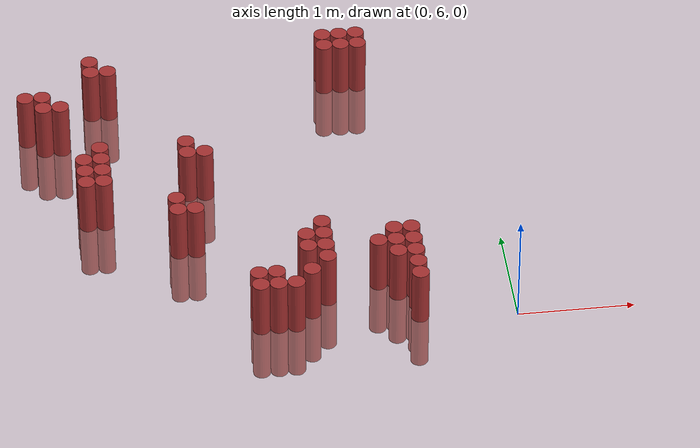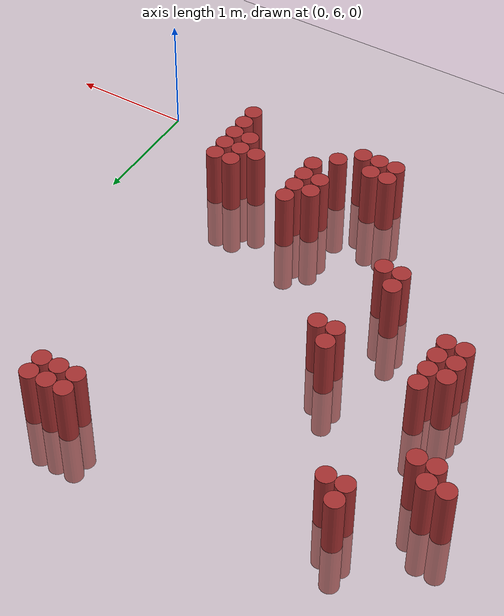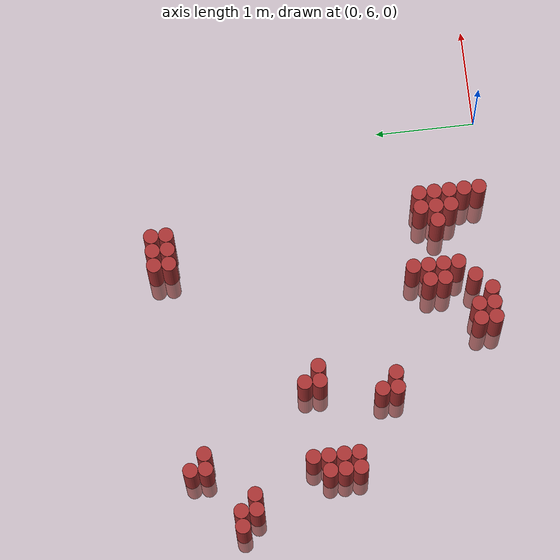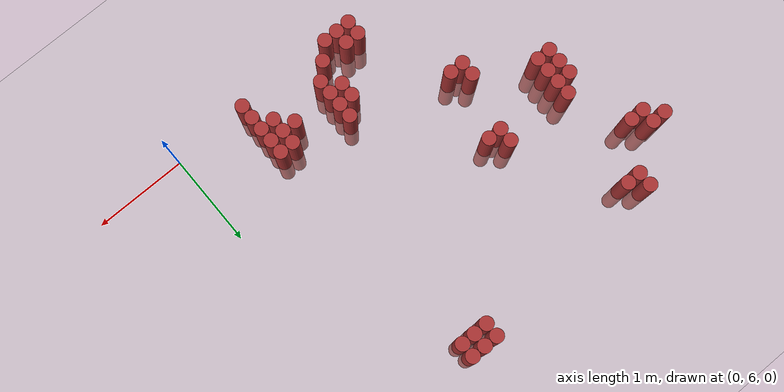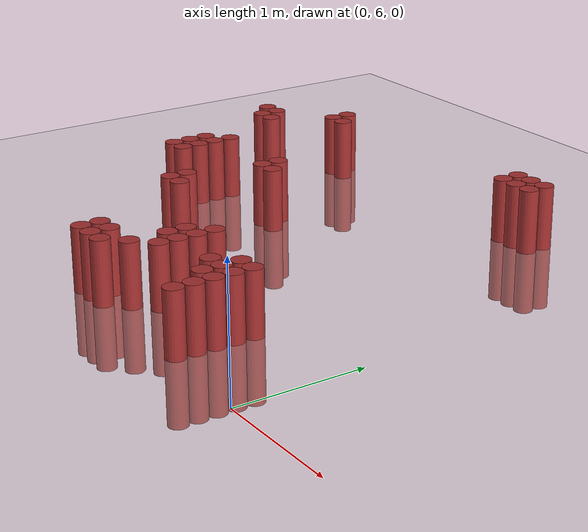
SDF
<sdf version="1.6">
 <world name="world_254">
  <model name="ground_plane">
   <static>1</static>
   <link name="link">
    <collision name="collision">
     <geometry><plane><normal>0 0 1</normal><size>100 100</size></plane></geometry>
     <surface><friction><ode><mu>100</mu><mu2>50</mu2></ode></friction></surface>
    </collision>
    <visual name="visual">
     <cast_shadows>0</cast_shadows>
     <geometry><plane><normal>0 0 1</normal><size>100 100</size></plane></geometry>
     <material>
      <script><uri>file://media/materials/scripts/gazebo.material</uri><name>Gazebo/Grey</name></script>
     </material>
    </visual>
   </link>
  </model>
  <model name="unit_cylinder_153">
   <static>1</static>
   <pose>-3.975000 8.775000 0.000000 0.000000 0.000000 0.000000</pose>
   <link name="link">
    <inertial>
     <mass>1</mass>
     <inertia><ixx>0.145833</ixx><ixy>0</ixy><ixz>0</ixz><iyy>0.145833</iyy><iyz>0</iyz><izz>0.125</izz></inertia>
    </inertial>
    <collision name="collision">
     <geometry><cylinder><radius>0.075000</radius><length>1</length></cylinder></geometry>
    </collision>
    <visual name="visual">
     <geometry><cylinder><radius>0.075000</radius><length>1</length></cylinder></geometry>
     <material>
      <ambient>0.648000 0.192000 0.192000 1</ambient>
      <diffuse>0.648000 0.192000 0.192000 1</diffuse>
     </material>
     <material>
      <script><name>Gazebo/Grey</name><uri>file://media/materials/scripts/gazebo.material</uri></script>
     </material>
    </visual>
   </link>
  </model>
  <model name="unit_cylinder_154">
   <static>1</static>
   <pose>-3.825000 8.625000 0.000000 0.000000 0.000000 0.000000</pose>
   <link name="link">
    <inertial>
     <mass>1</mass>
     <inertia><ixx>0.145833</ixx><ixy>0</ixy><ixz>0</ixz><iyy>0.145833</iyy><iyz>0</iyz><izz>0.125</izz></inertia>
    </inertial>
    <collision name="collision">
     <geometry><cylinder><radius>0.075000</radius><length>1</length></cylinder></geometry>
    </collision>
    <visual name="visual">
     <geometry><cylinder><radius>0.075000</radius><length>1</length></cylinder></geometry>
     <material>
      <ambient>0.648000 0.192000 0.192000 1</ambient>
      <diffuse>0.648000 0.192000 0.192000 1</diffuse>
     </material>
     <material>
      <script><name>Gazebo/Grey</name><uri>file://media/materials/scripts/gazebo.material</uri></script>
     </material>
    </visual>
   </link>
  </model>
  <model name="unit_cylinder_155">
   <static>1</static>
   <pose>-3.825000 8.775000 0.000000 0.000000 0.000000 0.000000</pose>
   <link name="link">
    <inertial>
     <mass>1</mass>
     <inertia><ixx>0.145833</ixx><ixy>0</ixy><ixz>0</ixz><iyy>0.145833</iyy><iyz>0</iyz><izz>0.125</izz></inertia>
    </inertial>
    <collision name="collision">
     <geometry><cylinder><radius>0.075000</radius><length>1</length></cylinder></geometry>
    </collision>
    <visual name="visual">
     <geometry><cylinder><radius>0.075000</radius><length>1</length></cylinder></geometry>
     <material>
      <ambient>0.648000 0.192000 0.192000 1</ambient>
      <diffuse>0.648000 0.192000 0.192000 1</diffuse>
     </material>
     <material>
      <script><name>Gazebo/Grey</name><uri>file://media/materials/scripts/gazebo.material</uri></script>
     </material>
    </visual>
   </link>
  </model>
  <model name="unit_cylinder_156">
   <static>1</static>
   <pose>-3.675000 8.625000 0.000000 0.000000 0.000000 0.000000</pose>
   <link name="link">
    <inertial>
     <mass>1</mass>
     <inertia><ixx>0.145833</ixx><ixy>0</ixy><ixz>0</ixz><iyy>0.145833</iyy><iyz>0</iyz><izz>0.125</izz></inertia>
    </inertial>
    <collision name="collision">
     <geometry><cylinder><radius>0.075000</radius><length>1</length></cylinder></geometry>
    </collision>
    <visual name="visual">
     <geometry><cylinder><radius>0.075000</radius><length>1</length></cylinder></geometry>
     <material>
      <ambient>0.648000 0.192000 0.192000 1</ambient>
      <diffuse>0.648000 0.192000 0.192000 1</diffuse>
     </material>
     <material>
      <script><name>Gazebo/Grey</name><uri>file://media/materials/scripts/gazebo.material</uri></script>
     </material>
    </visual>
   </link>
  </model>
  <model name="unit_cylinder_157">
   <static>1</static>
   <pose>-3.525000 7.575000 0.000000 0.000000 0.000000 0.000000</pose>
   <link name="link">
    <inertial>
     <mass>1</mass>
     <inertia><ixx>0.145833</ixx><ixy>0</ixy><ixz>0</ixz><iyy>0.145833</iyy><iyz>0</iyz><izz>0.125</izz></inertia>
    </inertial>
    <collision name="collision">
     <geometry><cylinder><radius>0.075000</radius><length>1</length></cylinder></geometry>
    </collision>
    <visual name="visual">
     <geometry><cylinder><radius>0.075000</radius><length>1</length></cylinder></geometry>
     <material>
      <ambient>0.648000 0.192000 0.192000 1</ambient>
      <diffuse>0.648000 0.192000 0.192000 1</diffuse>
     </material>
     <material>
      <script><name>Gazebo/Grey</name><uri>file://media/materials/scripts/gazebo.material</uri></script>
     </material>
    </visual>
   </link>
  </model>
  <model name="unit_cylinder_158">
   <static>1</static>
   <pose>-3.525000 7.725000 0.000000 0.000000 0.000000 0.000000</pose>
   <link name="link">
    <inertial>
     <mass>1</mass>
     <inertia><ixx>0.145833</ixx><ixy>0</ixy><ixz>0</ixz><iyy>0.145833</iyy><iyz>0</iyz><izz>0.125</izz></inertia>
    </inertial>
    <collision name="collision">
     <geometry><cylinder><radius>0.075000</radius><length>1</length></cylinder></geometry>
    </collision>
    <visual name="visual">
     <geometry><cylinder><radius>0.075000</radius><length>1</length></cylinder></geometry>
     <material>
      <ambient>0.648000 0.192000 0.192000 1</ambient>
      <diffuse>0.648000 0.192000 0.192000 1</diffuse>
     </material>
     <material>
      <script><name>Gazebo/Grey</name><uri>file://media/materials/scripts/gazebo.material</uri></script>
     </material>
    </visual>
   </link>
  </model>
  <model name="unit_cylinder_159">
   <static>1</static>
   <pose>-3.525000 7.875000 0.000000 0.000000 0.000000 0.000000</pose>
   <link name="link">
    <inertial>
     <mass>1</mass>
     <inertia><ixx>0.145833</ixx><ixy>0</ixy><ixz>0</ixz><iyy>0.145833</iyy><iyz>0</iyz><izz>0.125</izz></inertia>
    </inertial>
    <collision name="collision">
     <geometry><cylinder><radius>0.075000</radius><length>1</length></cylinder></geometry>
    </collision>
    <visual name="visual">
     <geometry><cylinder><radius>0.075000</radius><length>1</length></cylinder></geometry>
     <material>
      <ambient>0.648000 0.192000 0.192000 1</ambient>
      <diffuse>0.648000 0.192000 0.192000 1</diffuse>
     </material>
     <material>
      <script><name>Gazebo/Grey</name><uri>file://media/materials/scripts/gazebo.material</uri></script>
     </material>
    </visual>
   </link>
  </model>
  <model name="unit_cylinder_160">
   <static>1</static>
   <pose>-3.375000 7.575000 0.000000 0.000000 0.000000 0.000000</pose>
   <link name="link">
    <inertial>
     <mass>1</mass>
     <inertia><ixx>0.145833</ixx><ixy>0</ixy><ixz>0</ixz><iyy>0.145833</iyy><iyz>0</iyz><izz>0.125</izz></inertia>
    </inertial>
    <collision name="collision">
     <geometry><cylinder><radius>0.075000</radius><length>1</length></cylinder></geometry>
    </collision>
    <visual name="visual">
     <geometry><cylinder><radius>0.075000</radius><length>1</length></cylinder></geometry>
     <material>
      <ambient>0.648000 0.192000 0.192000 1</ambient>
      <diffuse>0.648000 0.192000 0.192000 1</diffuse>
     </material>
     <material>
      <script><name>Gazebo/Grey</name><uri>file://media/materials/scripts/gazebo.material</uri></script>
     </material>
    </visual>
   </link>
  </model>
  <model name="unit_cylinder_161">
   <static>1</static>
   <pose>-3.375000 7.725000 0.000000 0.000000 0.000000 0.000000</pose>
   <link name="link">
    <inertial>
     <mass>1</mass>
     <inertia><ixx>0.145833</ixx><ixy>0</ixy><ixz>0</ixz><iyy>0.145833</iyy><iyz>0</iyz><izz>0.125</izz></inertia>
    </inertial>
    <collision name="collision">
     <geometry><cylinder><radius>0.075000</radius><length>1</length></cylinder></geometry>
    </collision>
    <visual name="visual">
     <geometry><cylinder><radius>0.075000</radius><length>1</length></cylinder></geometry>
     <material>
      <ambient>0.648000 0.192000 0.192000 1</ambient>
      <diffuse>0.648000 0.192000 0.192000 1</diffuse>
     </material>
     <material>
      <script><name>Gazebo/Grey</name><uri>file://media/materials/scripts/gazebo.material</uri></script>
     </material>
    </visual>
   </link>
  </model>
  <model name="unit_cylinder_162">
   <static>1</static>
   <pose>-3.375000 7.875000 0.000000 0.000000 0.000000 0.000000</pose>
   <link name="link">
    <inertial>
     <mass>1</mass>
     <inertia><ixx>0.145833</ixx><ixy>0</ixy><ixz>0</ixz><iyy>0.145833</iyy><iyz>0</iyz><izz>0.125</izz></inertia>
    </inertial>
    <collision name="collision">
     <geometry><cylinder><radius>0.075000</radius><length>1</length></cylinder></geometry>
    </collision>
    <visual name="visual">
     <geometry><cylinder><radius>0.075000</radius><length>1</length></cylinder></geometry>
     <material>
      <ambient>0.648000 0.192000 0.192000 1</ambient>
      <diffuse>0.648000 0.192000 0.192000 1</diffuse>
     </material>
     <material>
      <script><name>Gazebo/Grey</name><uri>file://media/materials/scripts/gazebo.material</uri></script>
     </material>
    </visual>
   </link>
  </model>
  <model name="unit_cylinder_163">
   <static>1</static>
   <pose>-3.375000 8.025000 0.000000 0.000000 0.000000 0.000000</pose>
   <link name="link">
    <inertial>
     <mass>1</mass>
     <inertia><ixx>0.145833</ixx><ixy>0</ixy><ixz>0</ixz><iyy>0.145833</iyy><iyz>0</iyz><izz>0.125</izz></inertia>
    </inertial>
    <collision name="collision">
     <geometry><cylinder><radius>0.075000</radius><length>1</length></cylinder></geometry>
    </collision>
    <visual name="visual">
     <geometry><cylinder><radius>0.075000</radius><length>1</length></cylinder></geometry>
     <material>
      <ambient>0.648000 0.192000 0.192000 1</ambient>
      <diffuse>0.648000 0.192000 0.192000 1</diffuse>
     </material>
     <material>
      <script><name>Gazebo/Grey</name><uri>file://media/materials/scripts/gazebo.material</uri></script>
     </material>
    </visual>
   </link>
  </model>
  <model name="unit_cylinder_164">
   <static>1</static>
   <pose>-3.375000 9.075000 0.000000 0.000000 0.000000 0.000000</pose>
   <link name="link">
    <inertial>
     <mass>1</mass>
     <inertia><ixx>0.145833</ixx><ixy>0</ixy><ixz>0</ixz><iyy>0.145833</iyy><iyz>0</iyz><izz>0.125</izz></inertia>
    </inertial>
    <collision name="collision">
     <geometry><cylinder><radius>0.075000</radius><length>1</length></cylinder></geometry>
    </collision>
    <visual name="visual">
     <geometry><cylinder><radius>0.075000</radius><length>1</length></cylinder></geometry>
     <material>
      <ambient>0.648000 0.192000 0.192000 1</ambient>
      <diffuse>0.648000 0.192000 0.192000 1</diffuse>
     </material>
     <material>
      <script><name>Gazebo/Grey</name><uri>file://media/materials/scripts/gazebo.material</uri></script>
     </material>
    </visual>
   </link>
  </model>
  <model name="unit_cylinder_165">
   <static>1</static>
   <pose>-3.375000 9.225000 0.000000 0.000000 0.000000 0.000000</pose>
   <link name="link">
    <inertial>
     <mass>1</mass>
     <inertia><ixx>0.145833</ixx><ixy>0</ixy><ixz>0</ixz><iyy>0.145833</iyy><iyz>0</iyz><izz>0.125</izz></inertia>
    </inertial>
    <collision name="collision">
     <geometry><cylinder><radius>0.075000</radius><length>1</length></cylinder></geometry>
    </collision>
    <visual name="visual">
     <geometry><cylinder><radius>0.075000</radius><length>1</length></cylinder></geometry>
     <material>
      <ambient>0.648000 0.192000 0.192000 1</ambient>
      <diffuse>0.648000 0.192000 0.192000 1</diffuse>
     </material>
     <material>
      <script><name>Gazebo/Grey</name><uri>file://media/materials/scripts/gazebo.material</uri></script>
     </material>
    </visual>
   </link>
  </model>
  <model name="unit_cylinder_166">
   <static>1</static>
   <pose>-3.225000 9.075000 0.000000 0.000000 0.000000 0.000000</pose>
   <link name="link">
    <inertial>
     <mass>1</mass>
     <inertia><ixx>0.145833</ixx><ixy>0</ixy><ixz>0</ixz><iyy>0.145833</iyy><iyz>0</iyz><izz>0.125</izz></inertia>
    </inertial>
    <collision name="collision">
     <geometry><cylinder><radius>0.075000</radius><length>1</length></cylinder></geometry>
    </collision>
    <visual name="visual">
     <geometry><cylinder><radius>0.075000</radius><length>1</length></cylinder></geometry>
     <material>
      <ambient>0.648000 0.192000 0.192000 1</ambient>
      <diffuse>0.648000 0.192000 0.192000 1</diffuse>
     </material>
     <material>
      <script><name>Gazebo/Grey</name><uri>file://media/materials/scripts/gazebo.material</uri></script>
     </material>
    </visual>
   </link>
  </model>
  <model name="unit_cylinder_170">
   <static>1</static>
   <pose>-2.775000 7.125000 0.000000 0.000000 0.000000 0.000000</pose>
   <link name="link">
    <inertial>
     <mass>1</mass>
     <inertia><ixx>0.145833</ixx><ixy>0</ixy><ixz>0</ixz><iyy>0.145833</iyy><iyz>0</iyz><izz>0.125</izz></inertia>
    </inertial>
    <collision name="collision">
     <geometry><cylinder><radius>0.075000</radius><length>1</length></cylinder></geometry>
    </collision>
    <visual name="visual">
     <geometry><cylinder><radius>0.075000</radius><length>1</length></cylinder></geometry>
     <material>
      <ambient>0.648000 0.192000 0.192000 1</ambient>
      <diffuse>0.648000 0.192000 0.192000 1</diffuse>
     </material>
     <material>
      <script><name>Gazebo/Grey</name><uri>file://media/materials/scripts/gazebo.material</uri></script>
     </material>
    </visual>
   </link>
  </model>
  <model name="unit_cylinder_171">
   <static>1</static>
   <pose>-2.775000 7.275000 0.000000 0.000000 0.000000 0.000000</pose>
   <link name="link">
    <inertial>
     <mass>1</mass>
     <inertia><ixx>0.145833</ixx><ixy>0</ixy><ixz>0</ixz><iyy>0.145833</iyy><iyz>0</iyz><izz>0.125</izz></inertia>
    </inertial>
    <collision name="collision">
     <geometry><cylinder><radius>0.075000</radius><length>1</length></cylinder></geometry>
    </collision>
    <visual name="visual">
     <geometry><cylinder><radius>0.075000</radius><length>1</length></cylinder></geometry>
     <material>
      <ambient>0.648000 0.192000 0.192000 1</ambient>
      <diffuse>0.648000 0.192000 0.192000 1</diffuse>
     </material>
     <material>
      <script><name>Gazebo/Grey</name><uri>file://media/materials/scripts/gazebo.material</uri></script>
     </material>
    </visual>
   </link>
  </model>
  <model name="unit_cylinder_175">
   <static>1</static>
   <pose>-2.625000 7.125000 0.000000 0.000000 0.000000 0.000000</pose>
   <link name="link">
    <inertial>
     <mass>1</mass>
     <inertia><ixx>0.145833</ixx><ixy>0</ixy><ixz>0</ixz><iyy>0.145833</iyy><iyz>0</iyz><izz>0.125</izz></inertia>
    </inertial>
    <collision name="collision">
     <geometry><cylinder><radius>0.075000</radius><length>1</length></cylinder></geometry>
    </collision>
    <visual name="visual">
     <geometry><cylinder><radius>0.075000</radius><length>1</length></cylinder></geometry>
     <material>
      <ambient>0.648000 0.192000 0.192000 1</ambient>
      <diffuse>0.648000 0.192000 0.192000 1</diffuse>
     </material>
     <material>
      <script><name>Gazebo/Grey</name><uri>file://media/materials/scripts/gazebo.material</uri></script>
     </material>
    </visual>
   </link>
  </model>
  <model name="unit_cylinder_176">
   <static>1</static>
   <pose>-2.625000 7.875000 0.000000 0.000000 0.000000 0.000000</pose>
   <link name="link">
    <inertial>
     <mass>1</mass>
     <inertia><ixx>0.145833</ixx><ixy>0</ixy><ixz>0</ixz><iyy>0.145833</iyy><iyz>0</iyz><izz>0.125</izz></inertia>
    </inertial>
    <collision name="collision">
     <geometry><cylinder><radius>0.075000</radius><length>1</length></cylinder></geometry>
    </collision>
    <visual name="visual">
     <geometry><cylinder><radius>0.075000</radius><length>1</length></cylinder></geometry>
     <material>
      <ambient>0.648000 0.192000 0.192000 1</ambient>
      <diffuse>0.648000 0.192000 0.192000 1</diffuse>
     </material>
     <material>
      <script><name>Gazebo/Grey</name><uri>file://media/materials/scripts/gazebo.material</uri></script>
     </material>
    </visual>
   </link>
  </model>
  <model name="unit_cylinder_177">
   <static>1</static>
   <pose>-2.625000 8.025000 0.000000 0.000000 0.000000 0.000000</pose>
   <link name="link">
    <inertial>
     <mass>1</mass>
     <inertia><ixx>0.145833</ixx><ixy>0</ixy><ixz>0</ixz><iyy>0.145833</iyy><iyz>0</iyz><izz>0.125</izz></inertia>
    </inertial>
    <collision name="collision">
     <geometry><cylinder><radius>0.075000</radius><length>1</length></cylinder></geometry>
    </collision>
    <visual name="visual">
     <geometry><cylinder><radius>0.075000</radius><length>1</length></cylinder></geometry>
     <material>
      <ambient>0.648000 0.192000 0.192000 1</ambient>
      <diffuse>0.648000 0.192000 0.192000 1</diffuse>
     </material>
     <material>
      <script><name>Gazebo/Grey</name><uri>file://media/materials/scripts/gazebo.material</uri></script>
     </material>
    </visual>
   </link>
  </model>
  <model name="unit_cylinder_179">
   <static>1</static>
   <pose>-2.475000 7.875000 0.000000 0.000000 0.000000 0.000000</pose>
   <link name="link">
    <inertial>
     <mass>1</mass>
     <inertia><ixx>0.145833</ixx><ixy>0</ixy><ixz>0</ixz><iyy>0.145833</iyy><iyz>0</iyz><izz>0.125</izz></inertia>
    </inertial>
    <collision name="collision">
     <geometry><cylinder><radius>0.075000</radius><length>1</length></cylinder></geometry>
    </collision>
    <visual name="visual">
     <geometry><cylinder><radius>0.075000</radius><length>1</length></cylinder></geometry>
     <material>
      <ambient>0.648000 0.192000 0.192000 1</ambient>
      <diffuse>0.648000 0.192000 0.192000 1</diffuse>
     </material>
     <material>
      <script><name>Gazebo/Grey</name><uri>file://media/materials/scripts/gazebo.material</uri></script>
     </material>
    </visual>
   </link>
  </model>
  <model name="unit_cylinder_181">
   <static>1</static>
   <pose>-2.175000 6.075000 0.000000 0.000000 0.000000 0.000000</pose>
   <link name="link">
    <inertial>
     <mass>1</mass>
     <inertia><ixx>0.145833</ixx><ixy>0</ixy><ixz>0</ixz><iyy>0.145833</iyy><iyz>0</iyz><izz>0.125</izz></inertia>
    </inertial>
    <collision name="collision">
     <geometry><cylinder><radius>0.075000</radius><length>1</length></cylinder></geometry>
    </collision>
    <visual name="visual">
     <geometry><cylinder><radius>0.075000</radius><length>1</length></cylinder></geometry>
     <material>
      <ambient>0.648000 0.192000 0.192000 1</ambient>
      <diffuse>0.648000 0.192000 0.192000 1</diffuse>
     </material>
     <material>
      <script><name>Gazebo/Grey</name><uri>file://media/materials/scripts/gazebo.material</uri></script>
     </material>
    </visual>
   </link>
  </model>
  <model name="unit_cylinder_182">
   <static>1</static>
   <pose>-2.175000 6.225000 0.000000 0.000000 0.000000 0.000000</pose>
   <link name="link">
    <inertial>
     <mass>1</mass>
     <inertia><ixx>0.145833</ixx><ixy>0</ixy><ixz>0</ixz><iyy>0.145833</iyy><iyz>0</iyz><izz>0.125</izz></inertia>
    </inertial>
    <collision name="collision">
     <geometry><cylinder><radius>0.075000</radius><length>1</length></cylinder></geometry>
    </collision>
    <visual name="visual">
     <geometry><cylinder><radius>0.075000</radius><length>1</length></cylinder></geometry>
     <material>
      <ambient>0.648000 0.192000 0.192000 1</ambient>
      <diffuse>0.648000 0.192000 0.192000 1</diffuse>
     </material>
     <material>
      <script><name>Gazebo/Grey</name><uri>file://media/materials/scripts/gazebo.material</uri></script>
     </material>
    </visual>
   </link>
  </model>
  <model name="unit_cylinder_185">
   <static>1</static>
   <pose>-2.025000 6.075000 0.000000 0.000000 0.000000 0.000000</pose>
   <link name="link">
    <inertial>
     <mass>1</mass>
     <inertia><ixx>0.145833</ixx><ixy>0</ixy><ixz>0</ixz><iyy>0.145833</iyy><iyz>0</iyz><izz>0.125</izz></inertia>
    </inertial>
    <collision name="collision">
     <geometry><cylinder><radius>0.075000</radius><length>1</length></cylinder></geometry>
    </collision>
    <visual name="visual">
     <geometry><cylinder><radius>0.075000</radius><length>1</length></cylinder></geometry>
     <material>
      <ambient>0.648000 0.192000 0.192000 1</ambient>
      <diffuse>0.648000 0.192000 0.192000 1</diffuse>
     </material>
     <material>
      <script><name>Gazebo/Grey</name><uri>file://media/materials/scripts/gazebo.material</uri></script>
     </material>
    </visual>
   </link>
  </model>
  <model name="unit_cylinder_186">
   <static>1</static>
   <pose>-2.025000 6.225000 0.000000 0.000000 0.000000 0.000000</pose>
   <link name="link">
    <inertial>
     <mass>1</mass>
     <inertia><ixx>0.145833</ixx><ixy>0</ixy><ixz>0</ixz><iyy>0.145833</iyy><iyz>0</iyz><izz>0.125</izz></inertia>
    </inertial>
    <collision name="collision">
     <geometry><cylinder><radius>0.075000</radius><length>1</length></cylinder></geometry>
    </collision>
    <visual name="visual">
     <geometry><cylinder><radius>0.075000</radius><length>1</length></cylinder></geometry>
     <material>
      <ambient>0.648000 0.192000 0.192000 1</ambient>
      <diffuse>0.648000 0.192000 0.192000 1</diffuse>
     </material>
     <material>
      <script><name>Gazebo/Grey</name><uri>file://media/materials/scripts/gazebo.material</uri></script>
     </material>
    </visual>
   </link>
  </model>
  <model name="unit_cylinder_190">
   <static>1</static>
   <pose>-1.875000 6.075000 0.000000 0.000000 0.000000 0.000000</pose>
   <link name="link">
    <inertial>
     <mass>1</mass>
     <inertia><ixx>0.145833</ixx><ixy>0</ixy><ixz>0</ixz><iyy>0.145833</iyy><iyz>0</iyz><izz>0.125</izz></inertia>
    </inertial>
    <collision name="collision">
     <geometry><cylinder><radius>0.075000</radius><length>1</length></cylinder></geometry>
    </collision>
    <visual name="visual">
     <geometry><cylinder><radius>0.075000</radius><length>1</length></cylinder></geometry>
     <material>
      <ambient>0.648000 0.192000 0.192000 1</ambient>
      <diffuse>0.648000 0.192000 0.192000 1</diffuse>
     </material>
     <material>
      <script><name>Gazebo/Grey</name><uri>file://media/materials/scripts/gazebo.material</uri></script>
     </material>
    </visual>
   </link>
  </model>
  <model name="unit_cylinder_195">
   <static>1</static>
   <pose>-1.725000 6.225000 0.000000 0.000000 0.000000 0.000000</pose>
   <link name="link">
    <inertial>
     <mass>1</mass>
     <inertia><ixx>0.145833</ixx><ixy>0</ixy><ixz>0</ixz><iyy>0.145833</iyy><iyz>0</iyz><izz>0.125</izz></inertia>
    </inertial>
    <collision name="collision">
     <geometry><cylinder><radius>0.075000</radius><length>1</length></cylinder></geometry>
    </collision>
    <visual name="visual">
     <geometry><cylinder><radius>0.075000</radius><length>1</length></cylinder></geometry>
     <material>
      <ambient>0.648000 0.192000 0.192000 1</ambient>
      <diffuse>0.648000 0.192000 0.192000 1</diffuse>
     </material>
     <material>
      <script><name>Gazebo/Grey</name><uri>file://media/materials/scripts/gazebo.material</uri></script>
     </material>
    </visual>
   </link>
  </model>
  <model name="unit_cylinder_196">
   <static>1</static>
   <pose>-1.725000 6.525000 0.000000 0.000000 0.000000 0.000000</pose>
   <link name="link">
    <inertial>
     <mass>1</mass>
     <inertia><ixx>0.145833</ixx><ixy>0</ixy><ixz>0</ixz><iyy>0.145833</iyy><iyz>0</iyz><izz>0.125</izz></inertia>
    </inertial>
    <collision name="collision">
     <geometry><cylinder><radius>0.075000</radius><length>1</length></cylinder></geometry>
    </collision>
    <visual name="visual">
     <geometry><cylinder><radius>0.075000</radius><length>1</length></cylinder></geometry>
     <material>
      <ambient>0.648000 0.192000 0.192000 1</ambient>
      <diffuse>0.648000 0.192000 0.192000 1</diffuse>
     </material>
     <material>
      <script><name>Gazebo/Grey</name><uri>file://media/materials/scripts/gazebo.material</uri></script>
     </material>
    </visual>
   </link>
  </model>
  <model name="unit_cylinder_197">
   <static>1</static>
   <pose>-1.725000 6.675000 0.000000 0.000000 0.000000 0.000000</pose>
   <link name="link">
    <inertial>
     <mass>1</mass>
     <inertia><ixx>0.145833</ixx><ixy>0</ixy><ixz>0</ixz><iyy>0.145833</iyy><iyz>0</iyz><izz>0.125</izz></inertia>
    </inertial>
    <collision name="collision">
     <geometry><cylinder><radius>0.075000</radius><length>1</length></cylinder></geometry>
    </collision>
    <visual name="visual">
     <geometry><cylinder><radius>0.075000</radius><length>1</length></cylinder></geometry>
     <material>
      <ambient>0.648000 0.192000 0.192000 1</ambient>
      <diffuse>0.648000 0.192000 0.192000 1</diffuse>
     </material>
     <material>
      <script><name>Gazebo/Grey</name><uri>file://media/materials/scripts/gazebo.material</uri></script>
     </material>
    </visual>
   </link>
  </model>
  <model name="unit_cylinder_200">
   <static>1</static>
   <pose>-1.575000 6.375000 0.000000 0.000000 0.000000 0.000000</pose>
   <link name="link">
    <inertial>
     <mass>1</mass>
     <inertia><ixx>0.145833</ixx><ixy>0</ixy><ixz>0</ixz><iyy>0.145833</iyy><iyz>0</iyz><izz>0.125</izz></inertia>
    </inertial>
    <collision name="collision">
     <geometry><cylinder><radius>0.075000</radius><length>1</length></cylinder></geometry>
    </collision>
    <visual name="visual">
     <geometry><cylinder><radius>0.075000</radius><length>1</length></cylinder></geometry>
     <material>
      <ambient>0.648000 0.192000 0.192000 1</ambient>
      <diffuse>0.648000 0.192000 0.192000 1</diffuse>
     </material>
     <material>
      <script><name>Gazebo/Grey</name><uri>file://media/materials/scripts/gazebo.material</uri></script>
     </material>
    </visual>
   </link>
  </model>
  <model name="unit_cylinder_201">
   <static>1</static>
   <pose>-1.575000 6.525000 0.000000 0.000000 0.000000 0.000000</pose>
   <link name="link">
    <inertial>
     <mass>1</mass>
     <inertia><ixx>0.145833</ixx><ixy>0</ixy><ixz>0</ixz><iyy>0.145833</iyy><iyz>0</iyz><izz>0.125</izz></inertia>
    </inertial>
    <collision name="collision">
     <geometry><cylinder><radius>0.075000</radius><length>1</length></cylinder></geometry>
    </collision>
    <visual name="visual">
     <geometry><cylinder><radius>0.075000</radius><length>1</length></cylinder></geometry>
     <material>
      <ambient>0.648000 0.192000 0.192000 1</ambient>
      <diffuse>0.648000 0.192000 0.192000 1</diffuse>
     </material>
     <material>
      <script><name>Gazebo/Grey</name><uri>file://media/materials/scripts/gazebo.material</uri></script>
     </material>
    </visual>
   </link>
  </model>
  <model name="unit_cylinder_202">
   <static>1</static>
   <pose>-1.575000 6.675000 0.000000 0.000000 0.000000 0.000000</pose>
   <link name="link">
    <inertial>
     <mass>1</mass>
     <inertia><ixx>0.145833</ixx><ixy>0</ixy><ixz>0</ixz><iyy>0.145833</iyy><iyz>0</iyz><izz>0.125</izz></inertia>
    </inertial>
    <collision name="collision">
     <geometry><cylinder><radius>0.075000</radius><length>1</length></cylinder></geometry>
    </collision>
    <visual name="visual">
     <geometry><cylinder><radius>0.075000</radius><length>1</length></cylinder></geometry>
     <material>
      <ambient>0.648000 0.192000 0.192000 1</ambient>
      <diffuse>0.648000 0.192000 0.192000 1</diffuse>
     </material>
     <material>
      <script><name>Gazebo/Grey</name><uri>file://media/materials/scripts/gazebo.material</uri></script>
     </material>
    </visual>
   </link>
  </model>
  <model name="unit_cylinder_203">
   <static>1</static>
   <pose>-1.575000 6.825000 0.000000 0.000000 0.000000 0.000000</pose>
   <link name="link">
    <inertial>
     <mass>1</mass>
     <inertia><ixx>0.145833</ixx><ixy>0</ixy><ixz>0</ixz><iyy>0.145833</iyy><iyz>0</iyz><izz>0.125</izz></inertia>
    </inertial>
    <collision name="collision">
     <geometry><cylinder><radius>0.075000</radius><length>1</length></cylinder></geometry>
    </collision>
    <visual name="visual">
     <geometry><cylinder><radius>0.075000</radius><length>1</length></cylinder></geometry>
     <material>
      <ambient>0.648000 0.192000 0.192000 1</ambient>
      <diffuse>0.648000 0.192000 0.192000 1</diffuse>
     </material>
     <material>
      <script><name>Gazebo/Grey</name><uri>file://media/materials/scripts/gazebo.material</uri></script>
     </material>
    </visual>
   </link>
  </model>
  <model name="unit_cylinder_204">
   <static>1</static>
   <pose>-1.275000 9.225000 0.000000 0.000000 0.000000 0.000000</pose>
   <link name="link">
    <inertial>
     <mass>1</mass>
     <inertia><ixx>0.145833</ixx><ixy>0</ixy><ixz>0</ixz><iyy>0.145833</iyy><iyz>0</iyz><izz>0.125</izz></inertia>
    </inertial>
    <collision name="collision">
     <geometry><cylinder><radius>0.075000</radius><length>1</length></cylinder></geometry>
    </collision>
    <visual name="visual">
     <geometry><cylinder><radius>0.075000</radius><length>1</length></cylinder></geometry>
     <material>
      <ambient>0.648000 0.192000 0.192000 1</ambient>
      <diffuse>0.648000 0.192000 0.192000 1</diffuse>
     </material>
     <material>
      <script><name>Gazebo/Grey</name><uri>file://media/materials/scripts/gazebo.material</uri></script>
     </material>
    </visual>
   </link>
  </model>
  <model name="unit_cylinder_205">
   <static>1</static>
   <pose>-1.275000 9.375000 0.000000 0.000000 0.000000 0.000000</pose>
   <link name="link">
    <inertial>
     <mass>1</mass>
     <inertia><ixx>0.145833</ixx><ixy>0</ixy><ixz>0</ixz><iyy>0.145833</iyy><iyz>0</iyz><izz>0.125</izz></inertia>
    </inertial>
    <collision name="collision">
     <geometry><cylinder><radius>0.075000</radius><length>1</length></cylinder></geometry>
    </collision>
    <visual name="visual">
     <geometry><cylinder><radius>0.075000</radius><length>1</length></cylinder></geometry>
     <material>
      <ambient>0.648000 0.192000 0.192000 1</ambient>
      <diffuse>0.648000 0.192000 0.192000 1</diffuse>
     </material>
     <material>
      <script><name>Gazebo/Grey</name><uri>file://media/materials/scripts/gazebo.material</uri></script>
     </material>
    </visual>
   </link>
  </model>
  <model name="unit_cylinder_206">
   <static>1</static>
   <pose>-1.125000 6.525000 0.000000 0.000000 0.000000 0.000000</pose>
   <link name="link">
    <inertial>
     <mass>1</mass>
     <inertia><ixx>0.145833</ixx><ixy>0</ixy><ixz>0</ixz><iyy>0.145833</iyy><iyz>0</iyz><izz>0.125</izz></inertia>
    </inertial>
    <collision name="collision">
     <geometry><cylinder><radius>0.075000</radius><length>1</length></cylinder></geometry>
    </collision>
    <visual name="visual">
     <geometry><cylinder><radius>0.075000</radius><length>1</length></cylinder></geometry>
     <material>
      <ambient>0.648000 0.192000 0.192000 1</ambient>
      <diffuse>0.648000 0.192000 0.192000 1</diffuse>
     </material>
     <material>
      <script><name>Gazebo/Grey</name><uri>file://media/materials/scripts/gazebo.material</uri></script>
     </material>
    </visual>
   </link>
  </model>
  <model name="unit_cylinder_207">
   <static>1</static>
   <pose>-1.125000 9.225000 0.000000 0.000000 0.000000 0.000000</pose>
   <link name="link">
    <inertial>
     <mass>1</mass>
     <inertia><ixx>0.145833</ixx><ixy>0</ixy><ixz>0</ixz><iyy>0.145833</iyy><iyz>0</iyz><izz>0.125</izz></inertia>
    </inertial>
    <collision name="collision">
     <geometry><cylinder><radius>0.075000</radius><length>1</length></cylinder></geometry>
    </collision>
    <visual name="visual">
     <geometry><cylinder><radius>0.075000</radius><length>1</length></cylinder></geometry>
     <material>
      <ambient>0.648000 0.192000 0.192000 1</ambient>
      <diffuse>0.648000 0.192000 0.192000 1</diffuse>
     </material>
     <material>
      <script><name>Gazebo/Grey</name><uri>file://media/materials/scripts/gazebo.material</uri></script>
     </material>
    </visual>
   </link>
  </model>
  <model name="unit_cylinder_208">
   <static>1</static>
   <pose>-1.125000 9.375000 0.000000 0.000000 0.000000 0.000000</pose>
   <link name="link">
    <inertial>
     <mass>1</mass>
     <inertia><ixx>0.145833</ixx><ixy>0</ixy><ixz>0</ixz><iyy>0.145833</iyy><iyz>0</iyz><izz>0.125</izz></inertia>
    </inertial>
    <collision name="collision">
     <geometry><cylinder><radius>0.075000</radius><length>1</length></cylinder></geometry>
    </collision>
    <visual name="visual">
     <geometry><cylinder><radius>0.075000</radius><length>1</length></cylinder></geometry>
     <material>
      <ambient>0.648000 0.192000 0.192000 1</ambient>
      <diffuse>0.648000 0.192000 0.192000 1</diffuse>
     </material>
     <material>
      <script><name>Gazebo/Grey</name><uri>file://media/materials/scripts/gazebo.material</uri></script>
     </material>
    </visual>
   </link>
  </model>
  <model name="unit_cylinder_209">
   <static>1</static>
   <pose>-0.975000 6.375000 0.000000 0.000000 0.000000 0.000000</pose>
   <link name="link">
    <inertial>
     <mass>1</mass>
     <inertia><ixx>0.145833</ixx><ixy>0</ixy><ixz>0</ixz><iyy>0.145833</iyy><iyz>0</iyz><izz>0.125</izz></inertia>
    </inertial>
    <collision name="collision">
     <geometry><cylinder><radius>0.075000</radius><length>1</length></cylinder></geometry>
    </collision>
    <visual name="visual">
     <geometry><cylinder><radius>0.075000</radius><length>1</length></cylinder></geometry>
     <material>
      <ambient>0.648000 0.192000 0.192000 1</ambient>
      <diffuse>0.648000 0.192000 0.192000 1</diffuse>
     </material>
     <material>
      <script><name>Gazebo/Grey</name><uri>file://media/materials/scripts/gazebo.material</uri></script>
     </material>
    </visual>
   </link>
  </model>
  <model name="unit_cylinder_210">
   <static>1</static>
   <pose>-0.975000 6.525000 0.000000 0.000000 0.000000 0.000000</pose>
   <link name="link">
    <inertial>
     <mass>1</mass>
     <inertia><ixx>0.145833</ixx><ixy>0</ixy><ixz>0</ixz><iyy>0.145833</iyy><iyz>0</iyz><izz>0.125</izz></inertia>
    </inertial>
    <collision name="collision">
     <geometry><cylinder><radius>0.075000</radius><length>1</length></cylinder></geometry>
    </collision>
    <visual name="visual">
     <geometry><cylinder><radius>0.075000</radius><length>1</length></cylinder></geometry>
     <material>
      <ambient>0.648000 0.192000 0.192000 1</ambient>
      <diffuse>0.648000 0.192000 0.192000 1</diffuse>
     </material>
     <material>
      <script><name>Gazebo/Grey</name><uri>file://media/materials/scripts/gazebo.material</uri></script>
     </material>
    </visual>
   </link>
  </model>
  <model name="unit_cylinder_211">
   <static>1</static>
   <pose>-0.975000 6.675000 0.000000 0.000000 0.000000 0.000000</pose>
   <link name="link">
    <inertial>
     <mass>1</mass>
     <inertia><ixx>0.145833</ixx><ixy>0</ixy><ixz>0</ixz><iyy>0.145833</iyy><iyz>0</iyz><izz>0.125</izz></inertia>
    </inertial>
    <collision name="collision">
     <geometry><cylinder><radius>0.075000</radius><length>1</length></cylinder></geometry>
    </collision>
    <visual name="visual">
     <geometry><cylinder><radius>0.075000</radius><length>1</length></cylinder></geometry>
     <material>
      <ambient>0.648000 0.192000 0.192000 1</ambient>
      <diffuse>0.648000 0.192000 0.192000 1</diffuse>
     </material>
     <material>
      <script><name>Gazebo/Grey</name><uri>file://media/materials/scripts/gazebo.material</uri></script>
     </material>
    </visual>
   </link>
  </model>
  <model name="unit_cylinder_212">
   <static>1</static>
   <pose>-0.975000 9.225000 0.000000 0.000000 0.000000 0.000000</pose>
   <link name="link">
    <inertial>
     <mass>1</mass>
     <inertia><ixx>0.145833</ixx><ixy>0</ixy><ixz>0</ixz><iyy>0.145833</iyy><iyz>0</iyz><izz>0.125</izz></inertia>
    </inertial>
    <collision name="collision">
     <geometry><cylinder><radius>0.075000</radius><length>1</length></cylinder></geometry>
    </collision>
    <visual name="visual">
     <geometry><cylinder><radius>0.075000</radius><length>1</length></cylinder></geometry>
     <material>
      <ambient>0.648000 0.192000 0.192000 1</ambient>
      <diffuse>0.648000 0.192000 0.192000 1</diffuse>
     </material>
     <material>
      <script><name>Gazebo/Grey</name><uri>file://media/materials/scripts/gazebo.material</uri></script>
     </material>
    </visual>
   </link>
  </model>
  <model name="unit_cylinder_213">
   <static>1</static>
   <pose>-0.975000 9.375000 0.000000 0.000000 0.000000 0.000000</pose>
   <link name="link">
    <inertial>
     <mass>1</mass>
     <inertia><ixx>0.145833</ixx><ixy>0</ixy><ixz>0</ixz><iyy>0.145833</iyy><iyz>0</iyz><izz>0.125</izz></inertia>
    </inertial>
    <collision name="collision">
     <geometry><cylinder><radius>0.075000</radius><length>1</length></cylinder></geometry>
    </collision>
    <visual name="visual">
     <geometry><cylinder><radius>0.075000</radius><length>1</length></cylinder></geometry>
     <material>
      <ambient>0.648000 0.192000 0.192000 1</ambient>
      <diffuse>0.648000 0.192000 0.192000 1</diffuse>
     </material>
     <material>
      <script><name>Gazebo/Grey</name><uri>file://media/materials/scripts/gazebo.material</uri></script>
     </material>
    </visual>
   </link>
  </model>
  <model name="unit_cylinder_215">
   <static>1</static>
   <pose>-0.825000 6.075000 0.000000 0.000000 0.000000 0.000000</pose>
   <link name="link">
    <inertial>
     <mass>1</mass>
     <inertia><ixx>0.145833</ixx><ixy>0</ixy><ixz>0</ixz><iyy>0.145833</iyy><iyz>0</iyz><izz>0.125</izz></inertia>
    </inertial>
    <collision name="collision">
     <geometry><cylinder><radius>0.075000</radius><length>1</length></cylinder></geometry>
    </collision>
    <visual name="visual">
     <geometry><cylinder><radius>0.075000</radius><length>1</length></cylinder></geometry>
     <material>
      <ambient>0.648000 0.192000 0.192000 1</ambient>
      <diffuse>0.648000 0.192000 0.192000 1</diffuse>
     </material>
     <material>
      <script><name>Gazebo/Grey</name><uri>file://media/materials/scripts/gazebo.material</uri></script>
     </material>
    </visual>
   </link>
  </model>
  <model name="unit_cylinder_216">
   <static>1</static>
   <pose>-0.825000 6.225000 0.000000 0.000000 0.000000 0.000000</pose>
   <link name="link">
    <inertial>
     <mass>1</mass>
     <inertia><ixx>0.145833</ixx><ixy>0</ixy><ixz>0</ixz><iyy>0.145833</iyy><iyz>0</iyz><izz>0.125</izz></inertia>
    </inertial>
    <collision name="collision">
     <geometry><cylinder><radius>0.075000</radius><length>1</length></cylinder></geometry>
    </collision>
    <visual name="visual">
     <geometry><cylinder><radius>0.075000</radius><length>1</length></cylinder></geometry>
     <material>
      <ambient>0.648000 0.192000 0.192000 1</ambient>
      <diffuse>0.648000 0.192000 0.192000 1</diffuse>
     </material>
     <material>
      <script><name>Gazebo/Grey</name><uri>file://media/materials/scripts/gazebo.material</uri></script>
     </material>
    </visual>
   </link>
  </model>
  <model name="unit_cylinder_217">
   <static>1</static>
   <pose>-0.825000 6.375000 0.000000 0.000000 0.000000 0.000000</pose>
   <link name="link">
    <inertial>
     <mass>1</mass>
     <inertia><ixx>0.145833</ixx><ixy>0</ixy><ixz>0</ixz><iyy>0.145833</iyy><iyz>0</iyz><izz>0.125</izz></inertia>
    </inertial>
    <collision name="collision">
     <geometry><cylinder><radius>0.075000</radius><length>1</length></cylinder></geometry>
    </collision>
    <visual name="visual">
     <geometry><cylinder><radius>0.075000</radius><length>1</length></cylinder></geometry>
     <material>
      <ambient>0.648000 0.192000 0.192000 1</ambient>
      <diffuse>0.648000 0.192000 0.192000 1</diffuse>
     </material>
     <material>
      <script><name>Gazebo/Grey</name><uri>file://media/materials/scripts/gazebo.material</uri></script>
     </material>
    </visual>
   </link>
  </model>
  <model name="unit_cylinder_218">
   <static>1</static>
   <pose>-0.825000 6.525000 0.000000 0.000000 0.000000 0.000000</pose>
   <link name="link">
    <inertial>
     <mass>1</mass>
     <inertia><ixx>0.145833</ixx><ixy>0</ixy><ixz>0</ixz><iyy>0.145833</iyy><iyz>0</iyz><izz>0.125</izz></inertia>
    </inertial>
    <collision name="collision">
     <geometry><cylinder><radius>0.075000</radius><length>1</length></cylinder></geometry>
    </collision>
    <visual name="visual">
     <geometry><cylinder><radius>0.075000</radius><length>1</length></cylinder></geometry>
     <material>
      <ambient>0.648000 0.192000 0.192000 1</ambient>
      <diffuse>0.648000 0.192000 0.192000 1</diffuse>
     </material>
     <material>
      <script><name>Gazebo/Grey</name><uri>file://media/materials/scripts/gazebo.material</uri></script>
     </material>
    </visual>
   </link>
  </model>
  <model name="unit_cylinder_219">
   <static>1</static>
   <pose>-0.825000 6.675000 0.000000 0.000000 0.000000 0.000000</pose>
   <link name="link">
    <inertial>
     <mass>1</mass>
     <inertia><ixx>0.145833</ixx><ixy>0</ixy><ixz>0</ixz><iyy>0.145833</iyy><iyz>0</iyz><izz>0.125</izz></inertia>
    </inertial>
    <collision name="collision">
     <geometry><cylinder><radius>0.075000</radius><length>1</length></cylinder></geometry>
    </collision>
    <visual name="visual">
     <geometry><cylinder><radius>0.075000</radius><length>1</length></cylinder></geometry>
     <material>
      <ambient>0.648000 0.192000 0.192000 1</ambient>
      <diffuse>0.648000 0.192000 0.192000 1</diffuse>
     </material>
     <material>
      <script><name>Gazebo/Grey</name><uri>file://media/materials/scripts/gazebo.material</uri></script>
     </material>
    </visual>
   </link>
  </model>
 </world>
</sdf>
